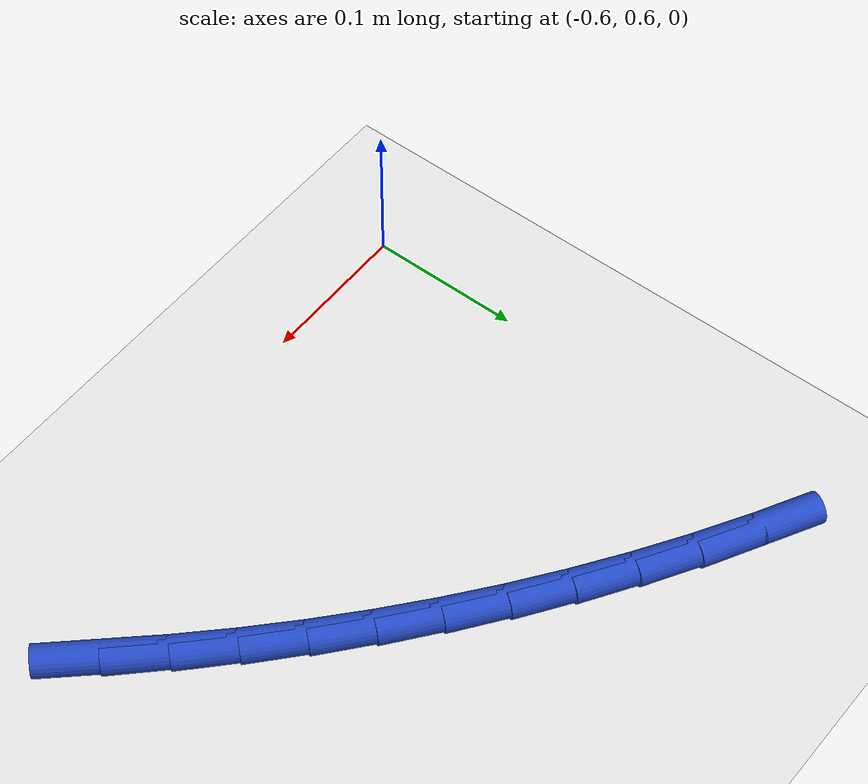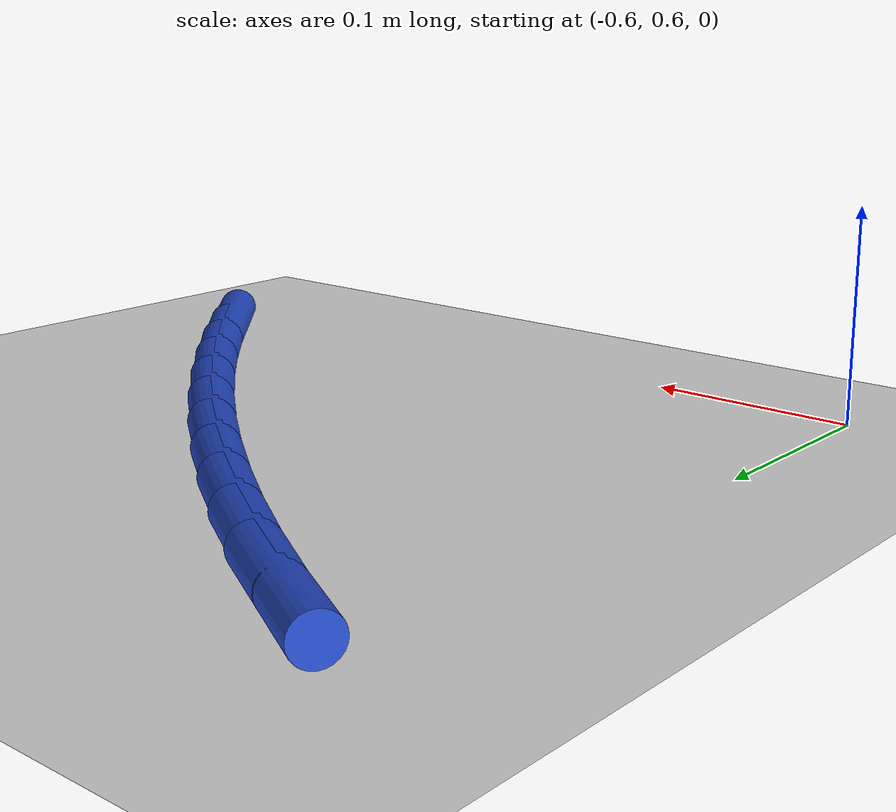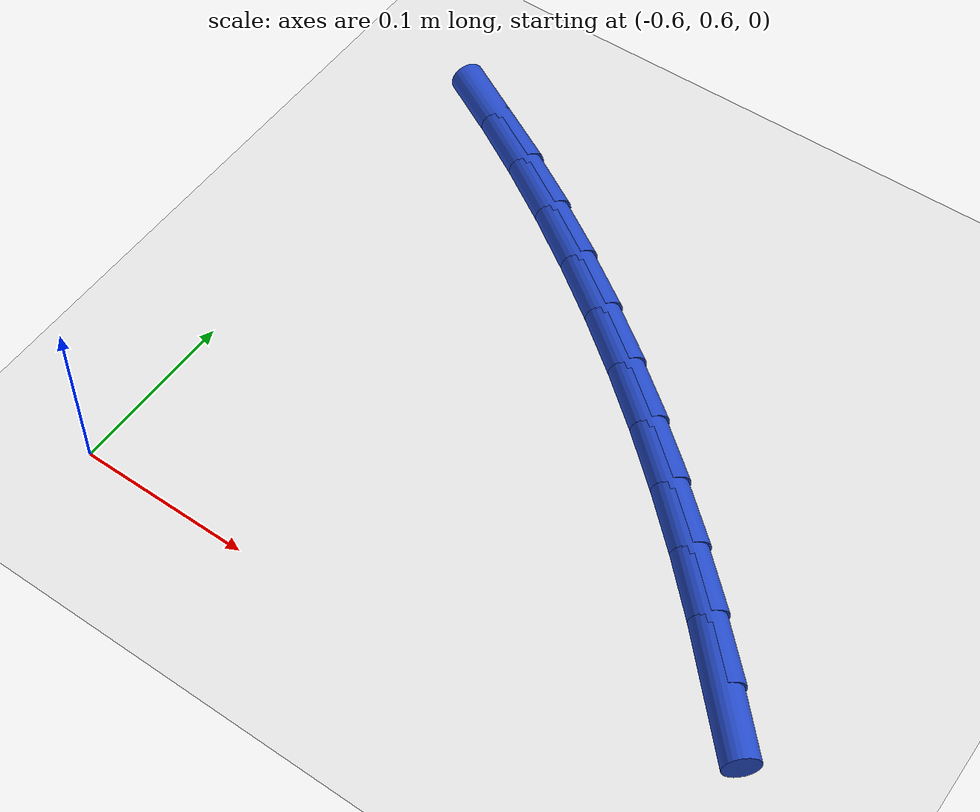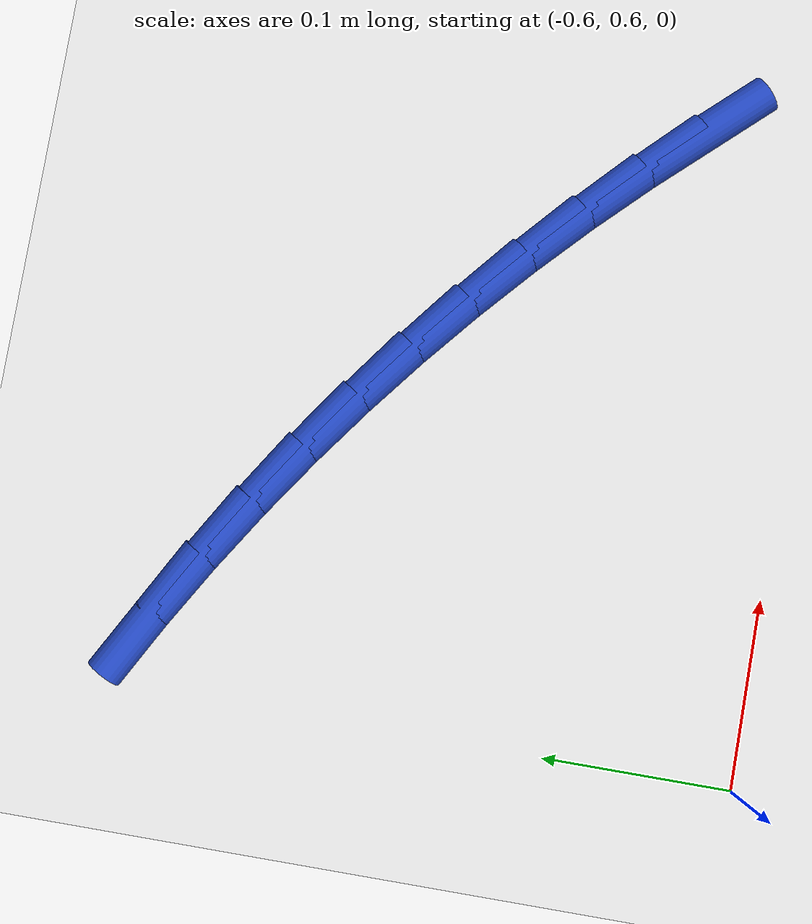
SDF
<sdf version="1.6">
 <world name="default">
  <model name="ground_plane">
   <static>1</static>
   <link name="link">
    <collision name="collision">
     <geometry><plane><normal>0 0 1</normal><size>100 100</size></plane></geometry>
     <surface><friction><ode><mu>100</mu><mu2>50</mu2></ode></friction></surface>
    </collision>
    <visual name="visual">
     <cast_shadows>0</cast_shadows>
     <geometry><plane><normal>0 0 1</normal><size>100 100</size></plane></geometry>
     <material>
      <script><uri>file://media/materials/scripts/gazebo.material</uri><name>Gazebo/WhiteGlow</name></script>
     </material>
    </visual>
   </link>
  </model>
  <model name="line">
   <link name="link_19">
    <pose>-0.26064371986494284 0.6697105866062247 0.01 0 1.57 -0.8270075016704576</pose>
    <collision name="collision">
     <geometry><cylinder><radius>0.01</radius><length>0.08</length></cylinder></geometry>
    </collision>
    <visual name="visual">
     <material>
      <script><name>Gazebo/Blue</name><uri>file://media/materials/scripts/gazebo.material</uri></script>
     </material>
     <geometry><cylinder><radius>0.01</radius><length>0.08</length></cylinder></geometry>
    </visual>
   </link>
   <link name="link_20">
    <pose>-0.28694776196354177 0.6983000293706688 0.01 0 1.57 -0.7943623125280375</pose>
    <collision name="collision">
     <geometry><cylinder><radius>0.01</radius><length>0.08</length></cylinder></geometry>
    </collision>
    <visual name="visual">
     <material>
      <script><name>Gazebo/Blue</name><uri>file://media/materials/scripts/gazebo.material</uri></script>
     </material>
     <geometry><cylinder><radius>0.01</radius><length>0.08</length></cylinder></geometry>
    </visual>
   </link>
   <link name="link_21">
    <pose>-0.3141504838499626 0.7259948744157183 0.01 0 1.57 -0.7621891850973217</pose>
    <collision name="collision">
     <geometry><cylinder><radius>0.01</radius><length>0.08</length></cylinder></geometry>
    </collision>
    <visual name="visual">
     <material>
      <script><name>Gazebo/Blue</name><uri>file://media/materials/scripts/gazebo.material</uri></script>
     </material>
     <geometry><cylinder><radius>0.01</radius><length>0.08</length></cylinder></geometry>
    </visual>
   </link>
   <link name="link_22">
    <pose>-0.3421937880614966 0.7527657686135767 0.01 0 1.57 -0.7303092666577966</pose>
    <collision name="collision">
     <geometry><cylinder><radius>0.01</radius><length>0.08</length></cylinder></geometry>
    </collision>
    <visual name="visual">
     <material>
      <script><name>Gazebo/Blue</name><uri>file://media/materials/scripts/gazebo.material</uri></script>
     </material>
     <geometry><cylinder><radius>0.01</radius><length>0.08</length></cylinder></geometry>
    </visual>
   </link>
   <link name="link_23">
    <pose>-0.37102613344990376 0.778584402570179 0.01 0 1.57 -0.6982809129060805</pose>
    <collision name="collision">
     <geometry><cylinder><radius>0.01</radius><length>0.08</length></cylinder></geometry>
    </collision>
    <visual name="visual">
     <material>
      <script><name>Gazebo/Blue</name><uri>file://media/materials/scripts/gazebo.material</uri></script>
     </material>
     <geometry><cylinder><radius>0.01</radius><length>0.08</length></cylinder></geometry>
    </visual>
   </link>
   <link name="link_24">
    <pose>-0.40062317583297435 0.803426796517649 0.01 0 1.57 -0.6659943344096472</pose>
    <collision name="collision">
     <geometry><cylinder><radius>0.01</radius><length>0.08</length></cylinder></geometry>
    </collision>
    <visual name="visual">
     <material>
      <script><name>Gazebo/Blue</name><uri>file://media/materials/scripts/gazebo.material</uri></script>
     </material>
     <geometry><cylinder><radius>0.01</radius><length>0.08</length></cylinder></geometry>
    </visual>
   </link>
   <link name="link_25">
    <pose>-0.4309676221308124 0.8272700931896882 0.01 0 1.57 -0.633446040794065</pose>
    <collision name="collision">
     <geometry><cylinder><radius>0.01</radius><length>0.08</length></cylinder></geometry>
    </collision>
    <visual name="visual">
     <material>
      <script><name>Gazebo/Blue</name><uri>file://media/materials/scripts/gazebo.material</uri></script>
     </material>
     <geometry><cylinder><radius>0.01</radius><length>0.08</length></cylinder></geometry>
    </visual>
   </link>
   <link name="link_26">
    <pose>-0.4620421792756493 0.8500914353219275 0.01 0 1.57 -0.6006343960636253</pose>
    <collision name="collision">
     <geometry><cylinder><radius>0.01</radius><length>0.08</length></cylinder></geometry>
    </collision>
    <visual name="visual">
     <material>
      <script><name>Gazebo/Blue</name><uri>file://media/materials/scripts/gazebo.material</uri></script>
     </material>
     <geometry><cylinder><radius>0.01</radius><length>0.08</length></cylinder></geometry>
    </visual>
   </link>
   <link name="link_27">
    <pose>-0.49382955419971564 0.8718679656499986 0.01 0 1.57 -0.5675597928125061</pose>
    <collision name="collision">
     <geometry><cylinder><radius>0.01</radius><length>0.08</length></cylinder></geometry>
    </collision>
    <visual name="visual">
     <material>
      <script><name>Gazebo/Blue</name><uri>file://media/materials/scripts/gazebo.material</uri></script>
     </material>
     <geometry><cylinder><radius>0.01</radius><length>0.08</length></cylinder></geometry>
    </visual>
   </link>
   <link name="link_28">
    <pose>-0.5263124538352428 0.8925768269095327 0.01 0 1.57 -0.5342248180543085</pose>
    <collision name="collision">
     <geometry><cylinder><radius>0.01</radius><length>0.08</length></cylinder></geometry>
    </collision>
    <visual name="visual">
     <material>
      <script><name>Gazebo/Blue</name><uri>file://media/materials/scripts/gazebo.material</uri></script>
     </material>
     <geometry><cylinder><radius>0.01</radius><length>0.08</length></cylinder></geometry>
    </visual>
   </link>
   <link name="link_29">
    <pose>-0.559473585114462 0.9121951618361613 0.01 0 1.57 -0.5006344066107499</pose>
    <collision name="collision">
     <geometry><cylinder><radius>0.01</radius><length>0.08</length></cylinder></geometry>
    </collision>
    <visual name="visual">
     <material>
      <script><name>Gazebo/Blue</name><uri>file://media/materials/scripts/gazebo.material</uri></script>
     </material>
     <geometry><cylinder><radius>0.01</radius><length>0.08</length></cylinder></geometry>
    </visual>
   </link>
  </model>
 </world>
</sdf>
